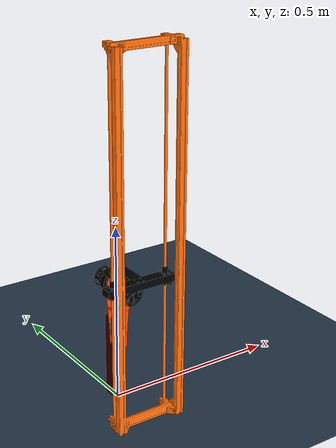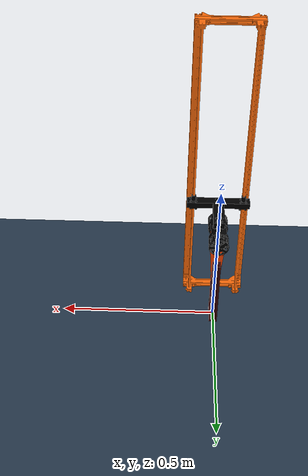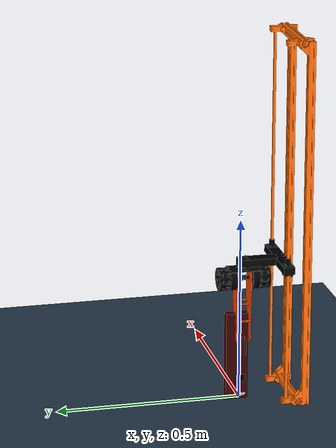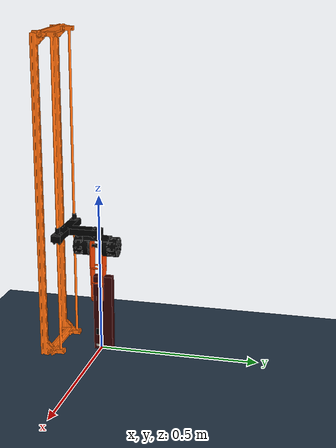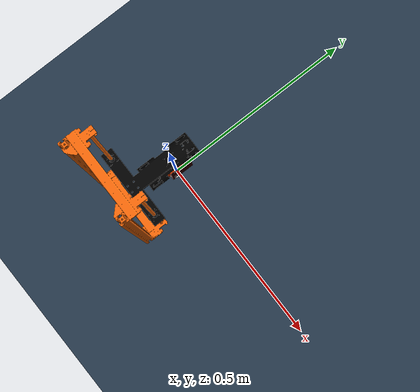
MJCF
<mujoco model="stoch25_description">
    <compiler angle="radian" meshdir="meshes" eulerseq="xyz" balanceinertia="true" />
    <option solver="Newton" integrator="RK4" gravity="0 0 -9.81" timestep="0.0001" cone="elliptic" iterations="50" impratio="2" tolerance="1e-10" />

    <size njmax="500" nconmax="100" />

    <equality>
        <weld body1="slot" />

    </equality>

    <asset>
        <material name="collision" rgba="0.1 0.5 0.9 0" />
        <material name="obstacle" rgba="0.2 0.6 0.2 1" />

        <mesh name="slot" file="slot_link.STL" scale="1 1 1" />
        <mesh name="base" file="base_Link.STL" scale="1 1 1" />
        <mesh name="flh" file="hip_Link.STL" scale="1 1 1" />
        <mesh name="flk" file="knee_Link.STL" scale="1 1 1" />
        <mesh name="flf" file="slider_foot_Link.STL" scale="1 1 1" />
        <mesh name="flfix" file="fix_foot_Link.STL" scale="1 1 1" />

 	    <texture type="skybox" builtin="gradient" rgb1="0.3 0.5 0.7" rgb2="0 0 0" width="512" height="512" />
        <texture name="texplane" type="2d" builtin="checker" rgb1=".2 .3 .4" rgb2=".1 0.15 0.2" width="512" height="512" mark="cross" markrgb=".8 .8 .8" />
        <texture name="texgeom" type="cube" builtin="flat" mark="cross" width="127" height="1278" rgb1="0.8 0.6 0.4" rgb2="0.8 0.6 0.4" markrgb="1 1 1" random="0.01" />
        <material name="matplane" reflectance="0.3" texture="texplane" texrepeat="1 1" texuniform="true" />
        <material name="matgeom" texture="texgeom" texuniform="true" rgba="0.8 0.6 .4 1" />
    </asset>

    <actuator>
        <position name="base_joint" kp="0" joint="base_joint" />
        <motor name="FL_hip_joint" gear="1" joint="FL_hip_joint" ctrllimited="true" ctrlrange="-6 6" forcelimited="true" forcerange="-6 6" />
        <motor name="FL_knee_joint" gear="1" joint="FL_knee_joint" ctrllimited="true" ctrlrange="-6 6" forcelimited="true" forcerange="-6 6" />

        <motor name="FL_foot_joint" gear="1" joint="FL_foot_joint" kp="15000" />

    </actuator>

    <default>
        <joint limited="true" damping="1" />
        <geom contype="0" conaffinity="0" condim="1" solref="0.005 1" />

        <equality solref="0.005 1" />
        <default class="collision">
            <geom material="collision" contype="1" user="2" />
            <default class="collision-left">
                <geom contype="2" conaffinity="4" />
            </default>
            <default class="collision-right">
                <geom contype="4" conaffinity="2" />
            </default>
        </default>
        <default class="obstacle">
            <geom material="obstacle" condim="3" contype="8" conaffinity="15" user="1" />
        </default>
    </default>

    <worldbody>
	<geom name="floor" pos="0 0 0" size="0 0 .25" type="plane" material="matplane" condim="3" conaffinity="15" friction="1 1 1" />
	<light directional="false" diffuse=".2 .2 .2" specular="0 0 0" pos="0 0 5" dir="0 0 -1" castshadow="false" />

        <light mode="targetbodycom" target="slot" directional="false" diffuse=".8 .8 .8" specular="0.3 0.3 0.3" pos="0 0 4.0" dir="0 0 -1" />
        <body name="slot" pos="0 0 0.34" euler="0 0 0">
		<freejoint name="root" />
            <inertial pos="1.4485E-05 0 0.16127" quat="0 0 0 1" mass="3.00" diaginertia="0.044062 0.044343 0.00032708" />
            <geom type="mesh" contype="0" conaffinity="0" group="1" rgba="1 0.423529 0.0392157 1" mesh="slot" quat="0 0 0 1" />
            <geom class="collision" size="0.105 0.195 0.035" pos="0 -0.005 0" type="box" rgba="1 0.423529 0.0392157 0" group="2" />

            <body name="base" pos="0 -0.108 0.054" euler="0 0 3.14">
                <inertial pos="-1.9883E-05 -0.056007 -0.027565" quat="0 0 0 1" mass="0.750" diaginertia="0.00035155 0.0016709 0.0013474" />
                <joint name="base_joint" pos="0 0 0" type="slide" axis="0 0 1" limited="true" range="-0.35 0.05" />
                <geom type="mesh" contype="0" conaffinity="0" group="1" rgba="0.0 0.0 0.0 1" mesh="base" />
                <geom class="collision" size="0.0235 0.082 0.022" pos="0.025 -0.072 0" quat="0 0 0 1" type="box" rgba="0.2 0 0 0" group="2" />

                <body name="FL_hip" pos="0 -0.031 -0.054" euler="0 0 0">
                    <inertial pos="-2.498E-14 -0.070952 -0.079802" quat="0 0 0 1" mass="0.150" diaginertia="7.7478E-05 7.7478E-05 4.3389E-06" />
                    <joint name="FL_hip_joint" pos="0 0 0" axis="0 1 0" limited="true" range="0 1.57" />
                    <geom type="mesh" contype="0" conaffinity="0" group="1" rgba="1.0 0.27 0.0 1" mesh="flh" />
                    <geom class="collision" size="0.0235 0.082 0.172" pos="0.025 -0.072 0" quat="0 0 0 0" type="box" rgba="0.2 0 0 0" group="2" />

                    <body name="FL_knee" pos="0 -0.08725 -0.17" euler="0 0 0">
                        <inertial pos="0.00081796 0.016214 -0.064659" quat="0 0 0 1" mass="0.080" diaginertia="7.7478E-05 7.7478E-05 4.3389E-06" />
                        <joint name="FL_knee_joint" pos="0 0 0" axis="0 1 0" limited="true" range="-3.14 0" />
                        <geom type="mesh" contype="0" conaffinity="0" group="1" rgba="0.0 0.0 0.0 1" mesh="flk" />
                        <geom class="collision-right" size="0.013 0.03 0.1248" pos="0 0 -0.0525" quat="0 0 0 0" type="box" rgba="0.2 0 0 1" group="2" />

                        <body name="FL_foot" pos="0 0.01625 -0.142" euler="0 0 0">
                            <inertial pos="-2.7756E-17 0 -0.013823" quat="0 0 0 1" mass="0.014" diaginertia="7.1163E-07 7.5201E-07 8.6006E-07" />

                            <joint name="FL_foot_joint" type="slide" pos="0 0 0" axis="0 0 1" limited="true" range="0 0.012" />
                            <geom name="FL_foot_geom" contype="0" conaffinity="0" group="1" rgba="1.0 1.0 1.0 1" type="mesh" mesh="flf" />
                            <geom class="collision" size="0.005 0.027" pos="0 0 0" quat="0 0 0 1" type="cylinder" rgba="0.2 0 0 0" group="2" condim="3" />

                            <body name="FL_fix" pos="0 0 -0.013" euler="0 0 0">
                                <inertial pos="-9.992E-15 7.8826E-15 -0.0076264" quat="0 0 0 1" mass="0.006" diaginertia="7.0839E-08 7.0839E-08 1.1334E-07" />
                                <geom name="FL_fix_geom" contype="0" conaffinity="0" group="1" rgba="0.913725 0.913725 0.847059 1" type="mesh" mesh="flfix" />
                                <geom class="collision-left" size="0.016" pos="0 0 0" quat="0 0 0 1" type="sphere" rgba="0.2 0 0 0" group="2" condim="3" />
                            </body>
                        </body>
                    </body>
                </body>
            </body>
        </body>
    </worldbody>

    <keyframe>

    </keyframe>
</mujoco>
